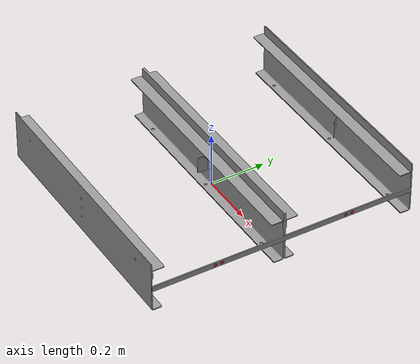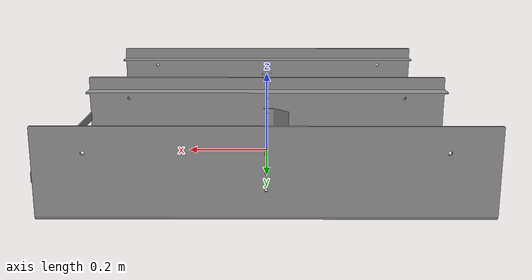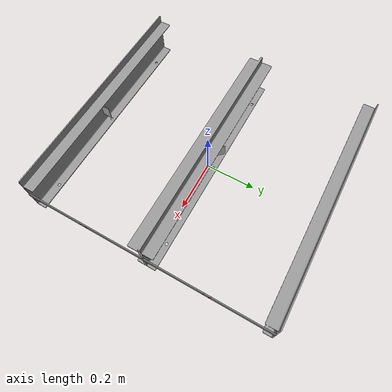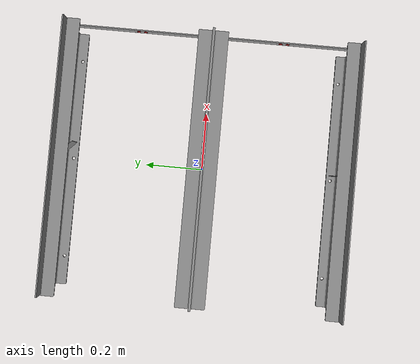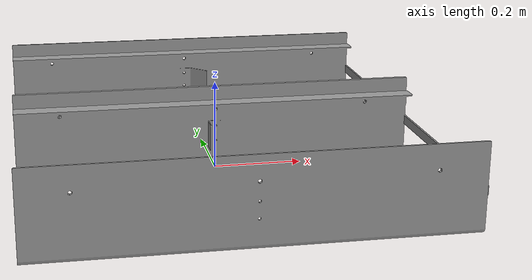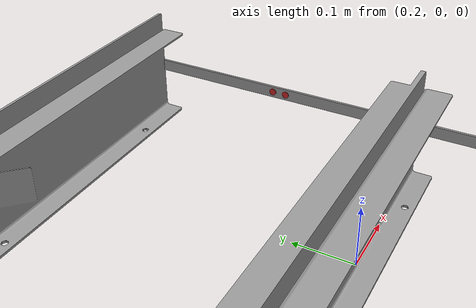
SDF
<?xml version='1.0'?>
<sdf version='1.7'>
  <model name='OpenEnd_900mm_closed'>
    <link name='link'>
      <inertial>
        <mass>0</mass>
        <inertia>
          <ixx>0</ixx>
          <ixy>0</ixy>
          <ixz>0</ixz>
          <iyy>0</iyy>
          <iyz>0</iyz>
          <izz>0</izz>
        </inertia>
        <pose>0 0 0 0 -0 0</pose>
      </inertial>
      <pose>0 0 0.002 0 -0 0</pose>
      <gravity>1</gravity>
      <self_collide>0</self_collide>
      <kinematic>0</kinematic>
      <enable_wind>0</enable_wind>
      <visual name='visual'>
        <pose>0 0 0 0 -0 0</pose>
        <geometry>
          <mesh>
            <uri>model://cannyone_simulation/models/openend_900mm_closed/meshes/openend_900mm.stl</uri>
            <scale>1 1 1</scale>
          </mesh>
        </geometry>
        <material>
          <lighting>1</lighting>
          <script>
            <uri>file://media/materials/scripts/gazebo.material</uri>
            <name>Gazebo/Grey</name>
          </script>
          <shader type='pixel'>
            <normal_map>__default__</normal_map>
          </shader>
          <ambient>0.3 0.3 0.3 1</ambient>
          <diffuse>0.7 0.7 0.7 1</diffuse>
          <specular>0.01 0.01 0.01 1</specular>
          <emissive>0 0 0 1</emissive>
        </material>
        <transparency>0</transparency>
        <cast_shadows>1</cast_shadows>
      </visual>
      <collision name='collision'>
        <laser_retro>0</laser_retro>
        <max_contacts>10</max_contacts>
        <pose>0 0 0 0 -0 0</pose>
        <geometry>
          <mesh>
            <uri>model://cannyone_simulation/models/openend_900mm_closed/meshes/openend_900mm.stl</uri>
            <scale>1 1 1</scale>
          </mesh>
        </geometry>
        <surface>
          <friction>
            <ode>
              <mu>1</mu>
              <mu2>1</mu2>
              <fdir1>0 0 0</fdir1>
              <slip1>0</slip1>
              <slip2>0</slip2>
            </ode>
            <torsional>
              <coefficient>1</coefficient>
              <patch_radius>0</patch_radius>
              <surface_radius>0</surface_radius>
              <use_patch_radius>1</use_patch_radius>
              <ode>
                <slip>0</slip>
              </ode>
            </torsional>
          </friction>
          <bounce>
            <restitution_coefficient>0</restitution_coefficient>
            <threshold>1e+06</threshold>
          </bounce>
          <contact>
            <collide_without_contact>0</collide_without_contact>
            <collide_without_contact_bitmask>1</collide_without_contact_bitmask>
            <collide_bitmask>1</collide_bitmask>
            <ode>
              <soft_cfm>0</soft_cfm>
              <soft_erp>0.2</soft_erp>
              <kp>1e+13</kp>
              <kd>1</kd>
              <max_vel>0.01</max_vel>
              <min_depth>0</min_depth>
            </ode>
            <bullet>
              <split_impulse>1</split_impulse>
              <split_impulse_penetration_threshold>-0.01</split_impulse_penetration_threshold>
              <soft_cfm>0</soft_cfm>
              <soft_erp>0.2</soft_erp>
              <kp>1e+13</kp>
              <kd>1</kd>
            </bullet>
          </contact>
        </surface>
      </collision>
    </link>

    <link name='end_bar'>
      <pose>0.4504 0.0 0.09 0 -0 0</pose>
      <collision name='collision'>
        <geometry>
          <box>
            <size>0.004 0.965 0.02</size>
          </box>
        </geometry>
      </collision>
      <visual name='visual'>
        <geometry>
          <box>
            <size>0.004 0.965 0.02</size>
          </box>
        </geometry>
        <material>
          <script>
            <name>Gazebo/Grey</name>
            <uri>file://media/materials/scripts/gazebo.material</uri>
          </script>
        </material>
      </visual>
      <self_collide>0</self_collide>
    </link>

    <link name='red_dot_1'>
    <pose>0.45 -0.2545 0.09 0 1.5708 0</pose>
      <visual name='visual'>
        <geometry>
          <cylinder>
            <radius>0.006</radius>
            <length>0.005</length>
          </cylinder>
        </geometry>
        <material>
          <script>
            <name>Gazebo/Red</name>
            <uri>file://media/materials/scripts/gazebo.material</uri>
          </script>
        </material>
      </visual>
      <self_collide>0</self_collide>
    </link>

    <link name='red_dot_2'>
    <pose>0.45 -0.2305 0.09 0 1.5708 0</pose>
      <visual name='visual'>
        <geometry>
          <cylinder>
            <radius>0.006</radius>
            <length>0.005</length>
          </cylinder>
        </geometry>
        <material>
          <script>
            <name>Gazebo/Red</name>
            <uri>file://media/materials/scripts/gazebo.material</uri>
          </script>
        </material>
      </visual>
      <self_collide>0</self_collide>
    </link>

    <link name='red_dot_3'>
    <pose>0.45 0.2305 0.09 0 1.5708 0</pose>
      <visual name='visual'>
        <geometry>
          <cylinder>
            <radius>0.006</radius>
            <length>0.005</length>
          </cylinder>
        </geometry>
        <material>
          <script>
            <name>Gazebo/Red</name>
            <uri>file://media/materials/scripts/gazebo.material</uri>
          </script>
        </material>
      </visual>
      <self_collide>0</self_collide>
    </link>

    <link name='red_dot_4'>
    <pose>0.45 0.2545 0.09 0 1.5708 0</pose>
      <visual name='visual'>
        <geometry>
          <cylinder>
            <radius>0.006</radius>
            <length>0.005</length>
          </cylinder>
        </geometry>
        <material>
          <script>
            <name>Gazebo/Red</name>
            <uri>file://media/materials/scripts/gazebo.material</uri>
          </script>
        </material>
      </visual>
      <self_collide>0</self_collide>
    </link>

    <static>1</static>
    <allow_auto_disable>1</allow_auto_disable>
  </model>
</sdf>
